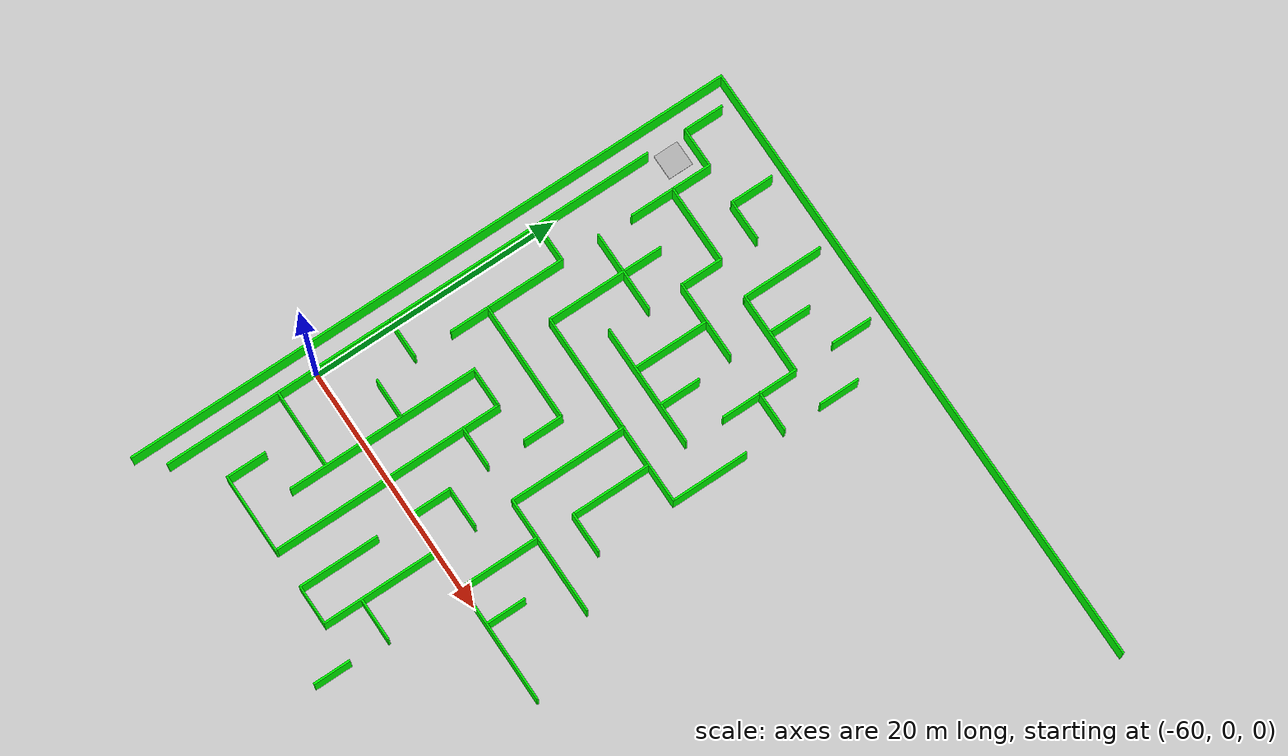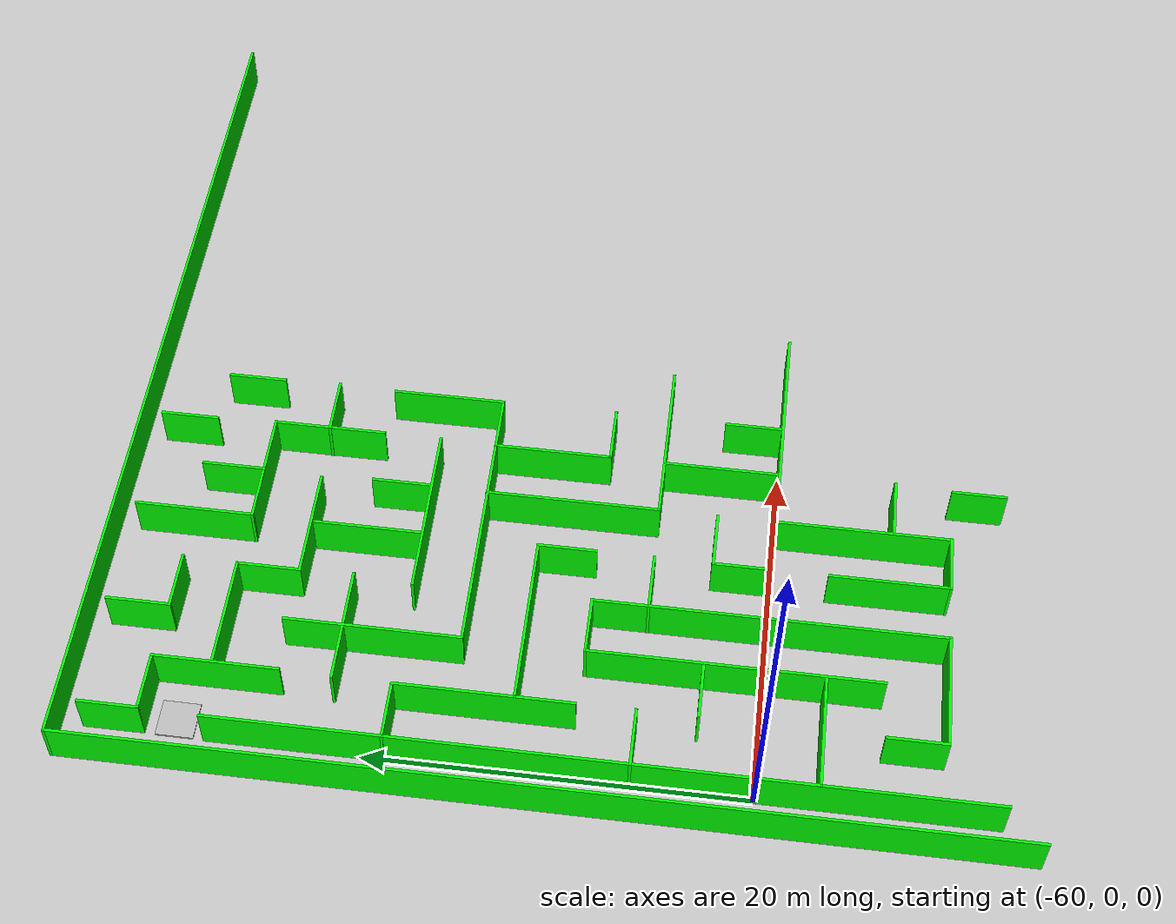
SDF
<sdf version="1.6">
 <world name="default">
  <include><uri>model://start_marker</uri><pose>-59.041698 29.635340 0.026924 0 0 -1.57</pose></include>
  <model name="Maze1">
   <pose>-36.2095 9.65499 0 0 -0 0</pose>
   <link name="Wall_103">
    <collision name="Wall_103_Collision">
     <geometry><box><size>6.5 0.15 2.5</size></box></geometry>
     <pose>0 0 1.25 0 -0 0</pose>
    </collision>
    <visual name="Wall_103_Visual">
     <pose>0 0 1.25 0 -0 0</pose>
     <geometry><box><size>6.5 0.15 2.5</size></box></geometry>
     <material>
      <script><uri>file://media/materials/scripts/gazebo.material</uri><name>Gazebo/Grey</name></script>
      <ambient>0 1 0 1</ambient>
     </material>
     <meta><layer>1</layer></meta>
    </visual>
    <pose>-5.05744 2.80401 0.001 0 -0 -1.5708</pose>
   </link>
   <link name="Wall_104">
    <collision name="Wall_104_Collision">
     <geometry><box><size>3.25 0.15 2.5</size></box></geometry>
     <pose>0 0 1.25 0 -0 0</pose>
    </collision>
    <visual name="Wall_104_Visual">
     <pose>0 0 1.25 0 -0 0</pose>
     <geometry><box><size>3.25 0.15 2.5</size></box></geometry>
     <material>
      <script><uri>file://media/materials/scripts/gazebo.material</uri><name>Gazebo/Grey</name></script>
      <ambient>0 1 0 1</ambient>
     </material>
     <meta><layer>1</layer></meta>
    </visual>
    <pose>-3.50744 -0.370993 0.001 0 -0 0</pose>
   </link>
   <link name="Wall_11">
    <collision name="Wall_11_Collision">
     <geometry><box><size>40.5 0.15 2.5</size></box></geometry>
     <pose>0 0 1.25 0 -0 0</pose>
    </collision>
    <visual name="Wall_11_Visual">
     <pose>0 0 1.25 0 -0 0</pose>
     <geometry><box><size>40.5 0.15 2.5</size></box></geometry>
     <material>
      <script><uri>file://media/materials/scripts/gazebo.material</uri><name>Gazebo/Grey</name></script>
      <ambient>0 1 0 1</ambient>
     </material>
     <meta><layer>1</layer></meta>
    </visual>
    <pose>-23.7929 -1.7987 0.001 0 -0 -1.5708</pose>
   </link>
   <link name="Wall_111">
    <collision name="Wall_111_Collision">
     <geometry><box><size>3 0.15 2.5</size></box></geometry>
     <pose>0 0 1.25 0 -0 0</pose>
    </collision>
    <visual name="Wall_111_Visual">
     <pose>0 0 1.25 0 -0 0</pose>
     <geometry><box><size>3 0.15 2.5</size></box></geometry>
     <material>
      <script><uri>file://media/materials/scripts/gazebo.material</uri><name>Gazebo/Grey</name></script>
      <ambient>0 1 0 1</ambient>
     </material>
     <meta><layer>1</layer></meta>
    </visual>
    <pose>-5.08108 -20.4688 0.001 0 -0 1.5708</pose>
   </link>
   <link name="Wall_114">
    <collision name="Wall_114_Collision">
     <geometry><box><size>3.5 0.15 2.5</size></box></geometry>
     <pose>0 0 1.25 0 -0 0</pose>
    </collision>
    <visual name="Wall_114_Visual">
     <pose>0 0 1.25 0 -0 0</pose>
     <geometry><box><size>3.5 0.15 2.5</size></box></geometry>
     <material>
      <script><uri>file://media/materials/scripts/gazebo.material</uri><name>Gazebo/Grey</name></script>
      <ambient>0 1 0 1</ambient>
     </material>
     <meta><layer>1</layer></meta>
    </visual>
    <pose>-6.57217 -15.9485 0.001 0 -0 0</pose>
   </link>
   <link name="Wall_152">
    <collision name="Wall_152_Collision">
     <geometry><box><size>6.5 0.15 2.5</size></box></geometry>
     <pose>0 0 1.25 0 -0 0</pose>
    </collision>
    <visual name="Wall_152_Visual">
     <pose>0 0 1.25 0 -0 0</pose>
     <geometry><box><size>6.5 0.15 2.5</size></box></geometry>
     <material>
      <script><uri>file://media/materials/scripts/gazebo.material</uri><name>Gazebo/Grey</name></script>
      <ambient>0 1 0 1</ambient>
     </material>
     <meta><layer>1</layer></meta>
    </visual>
    <pose>-11.3173 21.4915 0.001 0 -0 -1.5708</pose>
   </link>
   <link name="Wall_153">
    <collision name="Wall_153_Collision">
     <geometry><box><size>6.5 0.15 2.5</size></box></geometry>
     <pose>0 0 1.25 0 -0 0</pose>
    </collision>
    <visual name="Wall_153_Visual">
     <pose>0 0 1.25 0 -0 0</pose>
     <geometry><box><size>6.5 0.15 2.5</size></box></geometry>
     <material>
      <script><uri>file://media/materials/scripts/gazebo.material</uri><name>Gazebo/Grey</name></script>
      <ambient>0 1 0 1</ambient>
     </material>
     <meta><layer>1</layer></meta>
    </visual>
    <pose>-8.14233 18.3165 0.001 0 -0 0</pose>
   </link>
   <link name="Wall_154">
    <collision name="Wall_154_Collision">
     <geometry><box><size>6.25 0.15 2.5</size></box></geometry>
     <pose>0 0 1.25 0 -0 0</pose>
    </collision>
    <visual name="Wall_154_Visual">
     <pose>0 0 1.25 0 -0 0</pose>
     <geometry><box><size>6.25 0.15 2.5</size></box></geometry>
     <material>
      <script><uri>file://media/materials/scripts/gazebo.material</uri><name>Gazebo/Grey</name></script>
      <ambient>0 1 0 1</ambient>
     </material>
     <meta><layer>1</layer></meta>
    </visual>
    <pose>-4.96733 15.2665 0.001 0 -0 -1.5708</pose>
   </link>
   <link name="Wall_156">
    <collision name="Wall_156_Collision">
     <geometry><box><size>3.25 0.15 2.5</size></box></geometry>
     <pose>0 0 1.25 0 -0 0</pose>
    </collision>
    <visual name="Wall_156_Visual">
     <pose>0 0 1.25 0 -0 0</pose>
     <geometry><box><size>3.25 0.15 2.5</size></box></geometry>
     <material>
      <script><uri>file://media/materials/scripts/gazebo.material</uri><name>Gazebo/Grey</name></script>
      <ambient>0 1 0 1</ambient>
     </material>
     <meta><layer>1</layer></meta>
    </visual>
    <pose>-3.43516 15.2753 0.001 0 -0 0</pose>
   </link>
   <link name="Wall_158">
    <collision name="Wall_158_Collision">
     <geometry><box><size>3.5 0.15 2.5</size></box></geometry>
     <pose>0 0 1.25 0 -0 0</pose>
    </collision>
    <visual name="Wall_158_Visual">
     <pose>0 0 1.25 0 -0 0</pose>
     <geometry><box><size>3.5 0.15 2.5</size></box></geometry>
     <material>
      <script><uri>file://media/materials/scripts/gazebo.material</uri><name>Gazebo/Grey</name></script>
      <ambient>0 1 0 1</ambient>
     </material>
     <meta><layer>1</layer></meta>
    </visual>
    <pose>-8.22772 19.9936 0.001 0 -0 -1.5708</pose>
   </link>
   <link name="Wall_177">
    <collision name="Wall_177_Collision">
     <geometry><box><size>3.25 0.15 2.5</size></box></geometry>
     <pose>0 0 1.25 0 -0 0</pose>
    </collision>
    <visual name="Wall_177_Visual">
     <pose>0 0 1.25 0 -0 0</pose>
     <geometry><box><size>3.25 0.15 2.5</size></box></geometry>
     <material>
      <script><uri>file://media/materials/scripts/gazebo.material</uri><name>Gazebo/Grey</name></script>
      <ambient>0 1 0 1</ambient>
     </material>
     <meta><layer>1</layer></meta>
    </visual>
    <pose>-1.96825 19.9657 0.001 0 -0 1.5708</pose>
   </link>
   <link name="Wall_182">
    <collision name="Wall_182_Collision">
     <geometry><box><size>3.25 0.15 2.5</size></box></geometry>
     <pose>0 0 1.25 0 -0 0</pose>
    </collision>
    <visual name="Wall_182_Visual">
     <pose>0 0 1.25 0 -0 0</pose>
     <geometry><box><size>3.25 0.15 2.5</size></box></geometry>
     <material>
      <script><uri>file://media/materials/scripts/gazebo.material</uri><name>Gazebo/Grey</name></script>
      <ambient>0 1 0 1</ambient>
     </material>
     <meta><layer>1</layer></meta>
    </visual>
    <pose>-5.09691 23.1575 0.001 0 -0 1.5708</pose>
   </link>
   <link name="Wall_184">
    <collision name="Wall_184_Collision">
     <geometry><box><size>49.8916 0.15 2.5</size></box></geometry>
     <pose>0 0 1.25 0 -0 0</pose>
    </collision>
    <visual name="Wall_184_Visual">
     <pose>0 0 1.25 0 -0 0</pose>
     <geometry><box><size>49.8916 0.15 2.5</size></box></geometry>
     <material>
      <script><uri>file://media/materials/scripts/gazebo.material</uri><name>Gazebo/Grey</name></script>
      <ambient>0 1 0 1</ambient>
     </material>
     <meta><layer>1</layer></meta>
    </visual>
    <pose>-25.5843 1.04415 0.001 0 -0 -1.5708</pose>
   </link>
   <link name="Wall_187">
    <collision name="Wall_187_Collision">
     <geometry><box><size>50 0.15 2.5</size></box></geometry>
     <pose>0 0 1.25 0 -0 0</pose>
    </collision>
    <visual name="Wall_187_Visual">
     <pose>0 0 1.25 0 -0 0</pose>
     <geometry><box><size>50 0.15 2.5</size></box></geometry>
     <material>
      <script><uri>file://media/materials/scripts/gazebo.material</uri><name>Gazebo/Grey</name></script>
      <ambient>0 1 0 1</ambient>
     </material>
     <meta><layer>1</layer></meta>
    </visual>
    <pose>-0.659309 25.9149 0.001 0 -0 3.14159</pose>
   </link>
   <link name="Wall_19">
    <collision name="Wall_19_Collision">
     <geometry><box><size>3.5 0.15 2.5</size></box></geometry>
     <pose>0 0 1.25 0 -0 0</pose>
    </collision>
    <visual name="Wall_19_Visual">
     <pose>0 0 1.25 0 -0 0</pose>
     <geometry><box><size>3.5 0.15 2.5</size></box></geometry>
     <material>
      <script><uri>file://media/materials/scripts/gazebo.material</uri><name>Gazebo/Grey</name></script>
      <ambient>0 1 0 1</ambient>
     </material>
     <meta><layer>1</layer></meta>
    </visual>
    <pose>-17.4955 23.0694 0.001 0 -0 -1.5708</pose>
   </link>
   <link name="Wall_22">
    <collision name="Wall_22_Collision">
     <geometry><box><size>3.25 0.15 2.5</size></box></geometry>
     <pose>0 0 1.25 0 -0 0</pose>
    </collision>
    <visual name="Wall_22_Visual">
     <pose>0 0 1.25 0 -0 0</pose>
     <geometry><box><size>3.25 0.15 2.5</size></box></geometry>
     <material>
      <script><uri>file://media/materials/scripts/gazebo.material</uri><name>Gazebo/Grey</name></script>
      <ambient>0 1 0 1</ambient>
     </material>
     <meta><layer>1</layer></meta>
    </visual>
    <pose>-15.9455 21.3944 0.001 0 -0 0</pose>
   </link>
   <link name="Wall_24">
    <collision name="Wall_24_Collision">
     <geometry><box><size>6.25 0.15 2.5</size></box></geometry>
     <pose>0 0 1.25 0 -0 0</pose>
    </collision>
    <visual name="Wall_24_Visual">
     <pose>0 0 1.25 0 -0 0</pose>
     <geometry><box><size>6.25 0.15 2.5</size></box></geometry>
     <material>
      <script><uri>file://media/materials/scripts/gazebo.material</uri><name>Gazebo/Grey</name></script>
      <ambient>0 1 0 1</ambient>
     </material>
     <meta><layer>1</layer></meta>
    </visual>
    <pose>-17.5543 18.4456 0.001 0 -0 0</pose>
   </link>
   <link name="Wall_25">
    <collision name="Wall_25_Collision">
     <geometry><box><size>3.5 0.15 2.5</size></box></geometry>
     <pose>0 0 1.25 0 -0 0</pose>
    </collision>
    <visual name="Wall_25_Visual">
     <pose>0 0 1.25 0 -0 0</pose>
     <geometry><box><size>3.5 0.15 2.5</size></box></geometry>
     <material>
      <script><uri>file://media/materials/scripts/gazebo.material</uri><name>Gazebo/Grey</name></script>
      <ambient>0 1 0 1</ambient>
     </material>
     <meta><layer>1</layer></meta>
    </visual>
    <pose>-14.5043 16.7706 0.001 0 -0 -1.5708</pose>
   </link>
   <link name="Wall_26">
    <collision name="Wall_26_Collision">
     <geometry><box><size>6.25 0.15 2.5</size></box></geometry>
     <pose>0 0 1.25 0 -0 0</pose>
    </collision>
    <visual name="Wall_26_Visual">
     <pose>0 0 1.25 0 -0 0</pose>
     <geometry><box><size>6.25 0.15 2.5</size></box></geometry>
     <material>
      <script><uri>file://media/materials/scripts/gazebo.material</uri><name>Gazebo/Grey</name></script>
      <ambient>0 1 0 1</ambient>
     </material>
     <meta><layer>1</layer></meta>
    </visual>
    <pose>-11.4543 15.0956 0.001 0 -0 0</pose>
   </link>
   <link name="Wall_28">
    <collision name="Wall_28_Collision">
     <geometry><box><size>6 0.15 2.5</size></box></geometry>
     <pose>0 0 1.25 0 -0 0</pose>
    </collision>
    <visual name="Wall_28_Visual">
     <pose>0 0 1.25 0 -0 0</pose>
     <geometry><box><size>6 0.15 2.5</size></box></geometry>
     <material>
      <script><uri>file://media/materials/scripts/gazebo.material</uri><name>Gazebo/Grey</name></script>
      <ambient>0 1 0 1</ambient>
     </material>
     <meta><layer>1</layer></meta>
    </visual>
    <pose>-11.346 11.9848 0.001 0 -0 -1.5708</pose>
   </link>
   <link name="Wall_31">
    <collision name="Wall_31_Collision">
     <geometry><box><size>9.75 0.15 2.5</size></box></geometry>
     <pose>0 0 1.25 0 -0 0</pose>
    </collision>
    <visual name="Wall_31_Visual">
     <pose>0 0 1.25 0 -0 0</pose>
     <geometry><box><size>9.75 0.15 2.5</size></box></geometry>
     <material>
      <script><uri>file://media/materials/scripts/gazebo.material</uri><name>Gazebo/Grey</name></script>
      <ambient>0 1 0 1</ambient>
     </material>
     <meta><layer>1</layer></meta>
    </visual>
    <pose>-9.80268 9.0478 0.001 0 -0 0</pose>
   </link>
   <link name="Wall_33">
    <collision name="Wall_33_Collision">
     <geometry><box><size>6.5 0.15 2.5</size></box></geometry>
     <pose>0 0 1.25 0 -0 0</pose>
    </collision>
    <visual name="Wall_33_Visual">
     <pose>0 0 1.25 0 -0 0</pose>
     <geometry><box><size>6.5 0.15 2.5</size></box></geometry>
     <material>
      <script><uri>file://media/materials/scripts/gazebo.material</uri><name>Gazebo/Grey</name></script>
      <ambient>0 1 0 1</ambient>
     </material>
     <meta><layer>1</layer></meta>
    </visual>
    <pose>-17.5688 12.2114 0.001 0 -0 0</pose>
   </link>
   <link name="Wall_35">
    <collision name="Wall_35_Collision">
     <geometry><box><size>9.5 0.15 2.5</size></box></geometry>
     <pose>0 0 1.25 0 -0 0</pose>
    </collision>
    <visual name="Wall_35_Visual">
     <pose>0 0 1.25 0 -0 0</pose>
     <geometry><box><size>9.5 0.15 2.5</size></box></geometry>
     <material>
      <script><uri>file://media/materials/scripts/gazebo.material</uri><name>Gazebo/Grey</name></script>
      <ambient>0 1 0 1</ambient>
     </material>
     <meta><layer>1</layer></meta>
    </visual>
    <pose>-17.5802 10.6535 0.001 0 -0 -1.5708</pose>
   </link>
   <link name="Wall_36">
    <collision name="Wall_36_Collision">
     <geometry><box><size>15.75 0.15 2.5</size></box></geometry>
     <pose>0 0 1.25 0 -0 0</pose>
    </collision>
    <visual name="Wall_36_Visual">
     <pose>0 0 1.25 0 -0 0</pose>
     <geometry><box><size>15.75 0.15 2.5</size></box></geometry>
     <material>
      <script><uri>file://media/materials/scripts/gazebo.material</uri><name>Gazebo/Grey</name></script>
      <ambient>0 1 0 1</ambient>
     </material>
     <meta><layer>1</layer></meta>
    </visual>
    <pose>-9.78021 5.97853 0.001 0 -0 0</pose>
   </link>
   <link name="Wall_37">
    <collision name="Wall_37_Collision">
     <geometry><box><size>6.25 0.15 2.5</size></box></geometry>
     <pose>0 0 1.25 0 -0 0</pose>
    </collision>
    <visual name="Wall_37_Visual">
     <pose>0 0 1.25 0 -0 0</pose>
     <geometry><box><size>6.25 0.15 2.5</size></box></geometry>
     <material>
      <script><uri>file://media/materials/scripts/gazebo.material</uri><name>Gazebo/Grey</name></script>
      <ambient>0 1 0 1</ambient>
     </material>
     <meta><layer>1</layer></meta>
    </visual>
    <pose>-1.98021 9.02853 0.001 0 -0 1.5708</pose>
   </link>
   <link name="Wall_42">
    <collision name="Wall_42_Collision">
     <geometry><box><size>3.25 0.15 2.5</size></box></geometry>
     <pose>0 0 1.25 0 -0 0</pose>
    </collision>
    <visual name="Wall_42_Visual">
     <pose>0 0 1.25 0 -0 0</pose>
     <geometry><box><size>3.25 0.15 2.5</size></box></geometry>
     <material>
      <script><uri>file://media/materials/scripts/gazebo.material</uri><name>Gazebo/Grey</name></script>
      <ambient>0 1 0 1</ambient>
     </material>
     <meta><layer>1</layer></meta>
    </visual>
    <pose>-8.18238 10.708 0.001 0 -0 -1.5708</pose>
   </link>
   <link name="Wall_44">
    <collision name="Wall_44_Collision">
     <geometry><box><size>3.25 0.15 2.5</size></box></geometry>
     <pose>0 0 1.25 0 -0 0</pose>
    </collision>
    <visual name="Wall_44_Visual">
     <pose>0 0 1.25 0 -0 0</pose>
     <geometry><box><size>3.25 0.15 2.5</size></box></geometry>
     <material>
      <script><uri>file://media/materials/scripts/gazebo.material</uri><name>Gazebo/Grey</name></script>
      <ambient>0 1 0 1</ambient>
     </material>
     <meta><layer>1</layer></meta>
    </visual>
    <pose>-22.2644 9.09432 0.001 0 -0 0</pose>
   </link>
   <link name="Wall_45">
    <collision name="Wall_45_Collision">
     <geometry><box><size>9.5 0.15 2.5</size></box></geometry>
     <pose>0 0 1.25 0 -0 0</pose>
    </collision>
    <visual name="Wall_45_Visual">
     <pose>0 0 1.25 0 -0 0</pose>
     <geometry><box><size>9.5 0.15 2.5</size></box></geometry>
     <material>
      <script><uri>file://media/materials/scripts/gazebo.material</uri><name>Gazebo/Grey</name></script>
      <ambient>0 1 0 1</ambient>
     </material>
     <meta><layer>1</layer></meta>
    </visual>
    <pose>-20.7144 4.41932 0.001 0 -0 -1.5708</pose>
   </link>
   <link name="Wall_47">
    <collision name="Wall_47_Collision">
     <geometry><box><size>9.5 0.15 2.5</size></box></geometry>
     <pose>0 0 1.25 0 -0 0</pose>
    </collision>
    <visual name="Wall_47_Visual">
     <pose>0 0 1.25 0 -0 0</pose>
     <geometry><box><size>9.5 0.15 2.5</size></box></geometry>
     <material>
      <script><uri>file://media/materials/scripts/gazebo.material</uri><name>Gazebo/Grey</name></script>
      <ambient>0 1 0 1</ambient>
     </material>
     <meta><layer>1</layer></meta>
    </visual>
    <pose>-16.0223 2.8136 0.001 0 -0 0</pose>
   </link>
   <link name="Wall_48">
    <collision name="Wall_48_Collision">
     <geometry><box><size>3.25 0.15 2.5</size></box></geometry>
     <pose>0 0 1.25 0 -0 0</pose>
    </collision>
    <visual name="Wall_48_Visual">
     <pose>0 0 1.25 0 -0 0</pose>
     <geometry><box><size>3.25 0.15 2.5</size></box></geometry>
     <material>
      <script><uri>file://media/materials/scripts/gazebo.material</uri><name>Gazebo/Grey</name></script>
      <ambient>0 1 0 1</ambient>
     </material>
     <meta><layer>1</layer></meta>
    </visual>
    <pose>-11.3473 1.2636 0.001 0 -0 -1.5708</pose>
   </link>
   <link name="Wall_5">
    <collision name="Wall_5_Collision">
     <geometry><box><size>3.25 0.15 2.5</size></box></geometry>
     <pose>0 0 1.25 0 -0 0</pose>
    </collision>
    <visual name="Wall_5_Visual">
     <pose>0 0 1.25 0 -0 0</pose>
     <geometry><box><size>3.25 0.15 2.5</size></box></geometry>
     <material>
      <script><uri>file://media/materials/scripts/gazebo.material</uri><name>Gazebo/Grey</name></script>
      <ambient>0 1 0 1</ambient>
     </material>
     <meta><layer>1</layer></meta>
    </visual>
    <pose>-23.7221 23.1237 0.001 0 -0 -1.5708</pose>
   </link>
   <link name="Wall_50">
    <collision name="Wall_50_Collision">
     <geometry><box><size>3.25 0.15 2.5</size></box></geometry>
     <pose>0 0 1.25 0 -0 0</pose>
    </collision>
    <visual name="Wall_50_Visual">
     <pose>0 0 1.25 0 -0 0</pose>
     <geometry><box><size>3.25 0.15 2.5</size></box></geometry>
     <material>
      <script><uri>file://media/materials/scripts/gazebo.material</uri><name>Gazebo/Grey</name></script>
      <ambient>0 1 0 1</ambient>
     </material>
     <meta><layer>1</layer></meta>
    </visual>
    <pose>-22.2451 -3.36882 0.001 0 -0 0</pose>
   </link>
   <link name="Wall_52">
    <collision name="Wall_52_Collision">
     <geometry><box><size>3.25 0.15 2.5</size></box></geometry>
     <pose>0 0 1.25 0 -0 0</pose>
    </collision>
    <visual name="Wall_52_Visual">
     <pose>0 0 1.25 0 -0 0</pose>
     <geometry><box><size>3.25 0.15 2.5</size></box></geometry>
     <material>
      <script><uri>file://media/materials/scripts/gazebo.material</uri><name>Gazebo/Grey</name></script>
      <ambient>0 1 0 1</ambient>
     </material>
     <meta><layer>1</layer></meta>
    </visual>
    <pose>-19.0943 -6.51961 0.001 0 -0 0</pose>
   </link>
   <link name="Wall_54">
    <collision name="Wall_54_Collision">
     <geometry><box><size>3.25 0.15 2.5</size></box></geometry>
     <pose>0 0 1.25 0 -0 0</pose>
    </collision>
    <visual name="Wall_54_Visual">
     <pose>0 0 1.25 0 -0 0</pose>
     <geometry><box><size>3.25 0.15 2.5</size></box></geometry>
     <material>
      <script><uri>file://media/materials/scripts/gazebo.material</uri><name>Gazebo/Grey</name></script>
      <ambient>0 1 0 1</ambient>
     </material>
     <meta><layer>1</layer></meta>
    </visual>
    <pose>-15.9943 -0.419613 0.001 0 -0 0</pose>
   </link>
   <link name="Wall_55">
    <collision name="Wall_55_Collision">
     <geometry><box><size>18.75 0.15 2.5</size></box></geometry>
     <pose>0 0 1.25 0 -0 0</pose>
    </collision>
    <visual name="Wall_55_Visual">
     <pose>0 0 1.25 0 -0 0</pose>
     <geometry><box><size>18.75 0.15 2.5</size></box></geometry>
     <material>
      <script><uri>file://media/materials/scripts/gazebo.material</uri><name>Gazebo/Grey</name></script>
      <ambient>0 1 0 1</ambient>
     </material>
     <meta><layer>1</layer></meta>
    </visual>
    <pose>-14.4443 -9.71961 0.001 0 -0 -1.5708</pose>
   </link>
   <link name="Wall_56">
    <collision name="Wall_56_Collision">
     <geometry><box><size>6.35928 0.15 2.5</size></box></geometry>
     <pose>0 0 1.25 0 -0 0</pose>
    </collision>
    <visual name="Wall_56_Visual">
     <pose>0 0 1.25 0 -0 0</pose>
     <geometry><box><size>6.35928 0.15 2.5</size></box></geometry>
     <material>
      <script><uri>file://media/materials/scripts/gazebo.material</uri><name>Gazebo/Grey</name></script>
      <ambient>0 1 0 1</ambient>
     </material>
     <meta><layer>1</layer></meta>
    </visual>
    <pose>-17.5489 -19.0196 0.001 0 -0 3.14159</pose>
   </link>
   <link name="Wall_57">
    <collision name="Wall_57_Collision">
     <geometry><box><size>3.25 0.15 2.5</size></box></geometry>
     <pose>0 0 1.25 0 -0 0</pose>
    </collision>
    <visual name="Wall_57_Visual">
     <pose>0 0 1.25 0 -0 0</pose>
     <geometry><box><size>3.25 0.15 2.5</size></box></geometry>
     <material>
      <script><uri>file://media/materials/scripts/gazebo.material</uri><name>Gazebo/Grey</name></script>
      <ambient>0 1 0 1</ambient>
     </material>
     <meta><layer>1</layer></meta>
    </visual>
    <pose>-20.6888 -17.4696 0.001 0 -0 1.5708</pose>
   </link>
   <link name="Wall_59">
    <collision name="Wall_59_Collision">
     <geometry><box><size>3.5 0.15 2.5</size></box></geometry>
     <pose>0 0 1.25 0 -0 0</pose>
    </collision>
    <visual name="Wall_59_Visual">
     <pose>0 0 1.25 0 -0 0</pose>
     <geometry><box><size>3.5 0.15 2.5</size></box></geometry>
     <material>
      <script><uri>file://media/materials/scripts/gazebo.material</uri><name>Gazebo/Grey</name></script>
      <ambient>0 1 0 1</ambient>
     </material>
     <meta><layer>1</layer></meta>
    </visual>
    <pose>-22.1467 -9.62055 0.001 0 -0 0</pose>
   </link>
   <link name="Wall_6">
    <collision name="Wall_6_Collision">
     <geometry><box><size>3.25 0.15 2.5</size></box></geometry>
     <pose>0 0 1.25 0 -0 0</pose>
    </collision>
    <visual name="Wall_6_Visual">
     <pose>0 0 1.25 0 -0 0</pose>
     <geometry><box><size>3.25 0.15 2.5</size></box></geometry>
     <material>
      <script><uri>file://media/materials/scripts/gazebo.material</uri><name>Gazebo/Grey</name></script>
      <ambient>0 1 0 1</ambient>
     </material>
     <meta><layer>1</layer></meta>
    </visual>
    <pose>-22.1721 21.5737 0.001 0 -0 0</pose>
   </link>
   <link name="Wall_65">
    <collision name="Wall_65_Collision">
     <geometry><box><size>15.5 0.15 2.5</size></box></geometry>
     <pose>0 0 1.25 0 -0 0</pose>
    </collision>
    <visual name="Wall_65_Visual">
     <pose>0 0 1.25 0 -0 0</pose>
     <geometry><box><size>15.5 0.15 2.5</size></box></geometry>
     <material>
      <script><uri>file://media/materials/scripts/gazebo.material</uri><name>Gazebo/Grey</name></script>
      <ambient>0 1 0 1</ambient>
     </material>
     <meta><layer>1</layer></meta>
    </visual>
    <pose>-17.5443 -8.09461 0.001 0 -0 -1.5708</pose>
   </link>
   <link name="Wall_67">
    <collision name="Wall_67_Collision">
     <geometry><box><size>6.25 0.15 2.5</size></box></geometry>
     <pose>0 0 1.25 0 -0 0</pose>
    </collision>
    <visual name="Wall_67_Visual">
     <pose>0 0 1.25 0 -0 0</pose>
     <geometry><box><size>6.25 0.15 2.5</size></box></geometry>
     <material>
      <script><uri>file://media/materials/scripts/gazebo.material</uri><name>Gazebo/Grey</name></script>
      <ambient>0 1 0 1</ambient>
     </material>
     <meta><layer>1</layer></meta>
    </visual>
    <pose>-20.7365 -12.7866 0.001 0 -0 0</pose>
   </link>
   <link name="Wall_69">
    <collision name="Wall_69_Collision">
     <geometry><box><size>3.25 0.15 2.5</size></box></geometry>
     <pose>0 0 1.25 0 -0 0</pose>
    </collision>
    <visual name="Wall_69_Visual">
     <pose>0 0 1.25 0 -0 0</pose>
     <geometry><box><size>3.25 0.15 2.5</size></box></geometry>
     <material>
      <script><uri>file://media/materials/scripts/gazebo.material</uri><name>Gazebo/Grey</name></script>
      <ambient>0 1 0 1</ambient>
     </material>
     <meta><layer>1</layer></meta>
    </visual>
    <pose>-12.9141 -3.39391 0.001 0 -0 0</pose>
   </link>
   <link name="Wall_7">
    <collision name="Wall_7_Collision">
     <geometry><box><size>6.75 0.15 2.5</size></box></geometry>
     <pose>0 0 1.25 0 -0 0</pose>
    </collision>
    <visual name="Wall_7_Visual">
     <pose>0 0 1.25 0 -0 0</pose>
     <geometry><box><size>6.75 0.15 2.5</size></box></geometry>
     <material>
      <script><uri>file://media/materials/scripts/gazebo.material</uri><name>Gazebo/Grey</name></script>
      <ambient>0 1 0 1</ambient>
     </material>
     <meta><layer>1</layer></meta>
    </visual>
    <pose>-20.6221 18.2737 0.001 0 -0 -1.5708</pose>
   </link>
   <link name="Wall_71">
    <collision name="Wall_71_Collision">
     <geometry><box><size>3.25 0.15 2.5</size></box></geometry>
     <pose>0 0 1.25 0 -0 0</pose>
    </collision>
    <visual name="Wall_71_Visual">
     <pose>0 0 1.25 0 -0 0</pose>
     <geometry><box><size>3.25 0.15 2.5</size></box></geometry>
     <material>
      <script><uri>file://media/materials/scripts/gazebo.material</uri><name>Gazebo/Grey</name></script>
      <ambient>0 1 0 1</ambient>
     </material>
     <meta><layer>1</layer></meta>
    </visual>
    <pose>-12.9141 -9.62055 0.001 0 -0 0</pose>
   </link>
   <link name="Wall_72">
    <collision name="Wall_72_Collision">
     <geometry><box><size>3.25 0.15 2.5</size></box></geometry>
     <pose>0 0 1.25 0 -0 0</pose>
    </collision>
    <visual name="Wall_72_Visual">
     <pose>0 0 1.25 0 -0 0</pose>
     <geometry><box><size>3.25 0.15 2.5</size></box></geometry>
     <material>
      <script><uri>file://media/materials/scripts/gazebo.material</uri><name>Gazebo/Grey</name></script>
      <ambient>0 1 0 1</ambient>
     </material>
     <meta><layer>1</layer></meta>
    </visual>
    <pose>-11.3641 -8.07055 0.001 0 -0 1.5708</pose>
   </link>
   <link name="Wall_73">
    <collision name="Wall_73_Collision">
     <geometry><box><size>3.25 0.15 2.5</size></box></geometry>
     <pose>0 0 1.25 0 -0 0</pose>
    </collision>
    <visual name="Wall_73_Visual">
     <pose>0 0 1.25 0 -0 0</pose>
     <geometry><box><size>3.25 0.15 2.5</size></box></geometry>
     <material>
      <script><uri>file://media/materials/scripts/gazebo.material</uri><name>Gazebo/Grey</name></script>
      <ambient>0 1 0 1</ambient>
     </material>
     <meta><layer>1</layer></meta>
    </visual>
    <pose>-9.8141 -6.52055 0.001 0 -0 0</pose>
   </link>
   <link name="Wall_75">
    <collision name="Wall_75_Collision">
     <geometry><box><size>6.5 0.15 2.5</size></box></geometry>
     <pose>0 0 1.25 0 -0 0</pose>
    </collision>
    <visual name="Wall_75_Visual">
     <pose>0 0 1.25 0 -0 0</pose>
     <geometry><box><size>6.5 0.15 2.5</size></box></geometry>
     <material>
      <script><uri>file://media/materials/scripts/gazebo.material</uri><name>Gazebo/Grey</name></script>
      <ambient>0 1 0 1</ambient>
     </material>
     <meta><layer>1</layer></meta>
    </visual>
    <pose>-11.3532 -15.8354 0.001 0 -0 -1.5708</pose>
   </link>
   <link name="Wall_76">
    <collision name="Wall_76_Collision">
     <geometry><box><size>3.25 0.15 2.5</size></box></geometry>
     <pose>0 0 1.25 0 -0 0</pose>
    </collision>
    <visual name="Wall_76_Visual">
     <pose>0 0 1.25 0 -0 0</pose>
     <geometry><box><size>3.25 0.15 2.5</size></box></geometry>
     <material>
      <script><uri>file://media/materials/scripts/gazebo.material</uri><name>Gazebo/Grey</name></script>
      <ambient>0 1 0 1</ambient>
     </material>
     <meta><layer>1</layer></meta>
    </visual>
    <pose>-9.80324 -19.0104 0.001 0 -0 0</pose>
   </link>
   <link name="Wall_77">
    <collision name="Wall_77_Collision">
     <geometry><box><size>9.5 0.15 2.5</size></box></geometry>
     <pose>0 0 1.25 0 -0 0</pose>
    </collision>
    <visual name="Wall_77_Visual">
     <pose>0 0 1.25 0 -0 0</pose>
     <geometry><box><size>9.5 0.15 2.5</size></box></geometry>
     <material>
      <script><uri>file://media/materials/scripts/gazebo.material</uri><name>Gazebo/Grey</name></script>
      <ambient>0 1 0 1</ambient>
     </material>
     <meta><layer>1</layer></meta>
    </visual>
    <pose>-8.25324 -14.3354 0.001 0 -0 1.5708</pose>
   </link>
   <link name="Wall_78">
    <collision name="Wall_78_Collision">
     <geometry><box><size>12.75 0.15 2.5</size></box></geometry>
     <pose>0 0 1.25 0 -0 0</pose>
    </collision>
    <visual name="Wall_78_Visual">
     <pose>0 0 1.25 0 -0 0</pose>
     <geometry><box><size>12.75 0.15 2.5</size></box></geometry>
     <material>
      <script><uri>file://media/materials/scripts/gazebo.material</uri><name>Gazebo/Grey</name></script>
      <ambient>0 1 0 1</ambient>
     </material>
     <meta><layer>1</layer></meta>
    </visual>
    <pose>-1.95324 -9.66042 0.001 0 -0 0</pose>
   </link>
   <link name="Wall_80">
    <collision name="Wall_80_Collision">
     <geometry><box><size>6.25 0.15 2.5</size></box></geometry>
     <pose>0 0 1.25 0 -0 0</pose>
    </collision>
    <visual name="Wall_80_Visual">
     <pose>0 0 1.25 0 -0 0</pose>
     <geometry><box><size>6.25 0.15 2.5</size></box></geometry>
     <material>
      <script><uri>file://media/materials/scripts/gazebo.material</uri><name>Gazebo/Grey</name></script>
      <ambient>0 1 0 1</ambient>
     </material>
     <meta><layer>1</layer></meta>
    </visual>
    <pose>-5.09142 -6.4584 0.001 0 -0 -1.5708</pose>
   </link>
   <link name="Wall_82">
    <collision name="Wall_82_Collision">
     <geometry><box><size>3.25 0.15 2.5</size></box></geometry>
     <pose>0 0 1.25 0 -0 0</pose>
    </collision>
    <visual name="Wall_82_Visual">
     <pose>0 0 1.25 0 -0 0</pose>
     <geometry><box><size>3.25 0.15 2.5</size></box></geometry>
     <material>
      <script><uri>file://media/materials/scripts/gazebo.material</uri><name>Gazebo/Grey</name></script>
      <ambient>0 1 0 1</ambient>
     </material>
     <meta><layer>1</layer></meta>
    </visual>
    <pose>-1.96051 -8.08931 0.001 0 -0 -1.5708</pose>
   </link>
   <link name="Wall_84">
    <collision name="Wall_84_Collision">
     <geometry><box><size>9.5 0.15 2.5</size></box></geometry>
     <pose>0 0 1.25 0 -0 0</pose>
    </collision>
    <visual name="Wall_84_Visual">
     <pose>0 0 1.25 0 -0 0</pose>
     <geometry><box><size>9.5 0.15 2.5</size></box></geometry>
     <material>
      <script><uri>file://media/materials/scripts/gazebo.material</uri><name>Gazebo/Grey</name></script>
      <ambient>0 1 0 1</ambient>
     </material>
     <meta><layer>1</layer></meta>
    </visual>
    <pose>-8.25102 1.32226 0.001 0 -0 -1.5708</pose>
   </link>
   <link name="Wall_87">
    <collision name="Wall_87_Collision">
     <geometry><box><size>9.5 0.15 2.5</size></box></geometry>
     <pose>0 0 1.25 0 -0 0</pose>
    </collision>
    <visual name="Wall_87_Visual">
     <pose>0 0 1.25 0 -0 0</pose>
     <geometry><box><size>9.5 0.15 2.5</size></box></geometry>
     <material>
      <script><uri>file://media/materials/scripts/gazebo.material</uri><name>Gazebo/Grey</name></script>
      <ambient>0 1 0 1</ambient>
     </material>
     <meta><layer>1</layer></meta>
    </visual>
    <pose>-3.57602 -3.35274 0.001 0 -0 0</pose>
   </link>
   <static>1</static>
  </model>
 </world>
</sdf>
